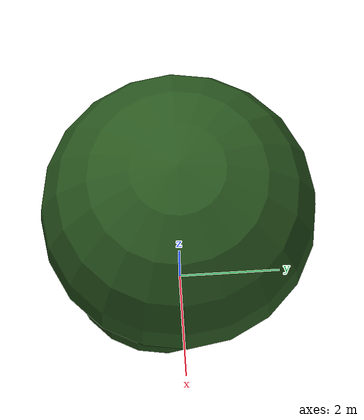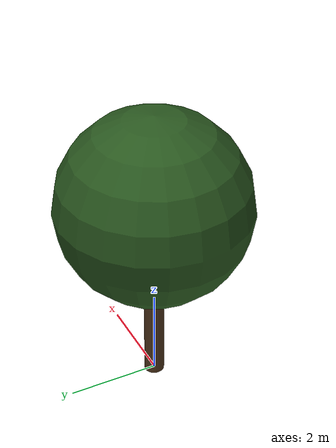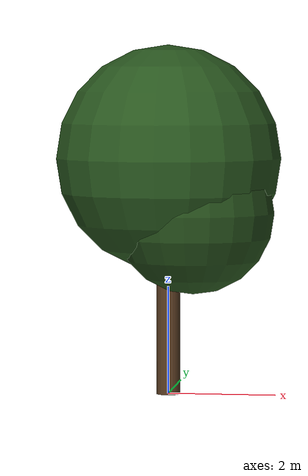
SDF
<?xml version="1.0" ?>
<!-- Rounded tree. No mesh, no texture: 40 of these load instantly and need no network. -->
<sdf version="1.9">
  <model name="tree_oak">
    <static>true</static>
    <link name="trunk">
      <pose>0 0 1.6 0 0 0</pose>
      <visual name="v">
        <geometry><cylinder><radius>0.22</radius><length>3.2</length></cylinder></geometry>
        <material><ambient>0.24 0.16 0.09 1</ambient><diffuse>0.33 0.22 0.12 1</diffuse></material>
      </visual>
      <collision name="c">
        <geometry><cylinder><radius>0.22</radius><length>3.2</length></cylinder></geometry>
      </collision>
    </link>
    <link name="canopy">
      <pose>0 0 4.4 0 0 0</pose>
      <visual name="v">
        <geometry><sphere><radius>2.1</radius></sphere></geometry>
        <material><ambient>0.10 0.22 0.08 1</ambient><diffuse>0.16 0.34 0.12 1</diffuse></material>
      </visual>
    </link>
    <link name="canopy_low">
      <pose>0.5 -0.3 3.4 0 0 0</pose>
      <visual name="v">
        <geometry><sphere><radius>1.5</radius></sphere></geometry>
        <material><ambient>0.09 0.20 0.07 1</ambient><diffuse>0.14 0.30 0.10 1</diffuse></material>
      </visual>
    </link>
  </model>
</sdf>
